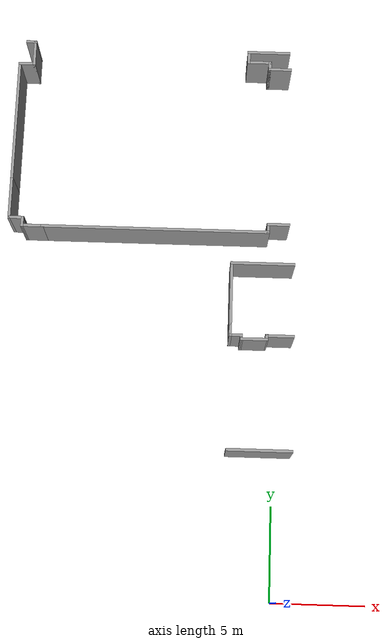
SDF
<sdf version="1.6">
 <model name="volen.world">
  <link name="Wall_270">
   <pose>-0.79477 7.68036 0 0 -0 0</pose>
   <visual name="Wall_270_Visual">
    <pose>0 0 1.25 0 -0 0</pose>
    <geometry><box><size>3.53 0.15 2.5</size></box></geometry>
    <material>
     <script><uri>file://media/materials/scripts/gazebo.material</uri><name>Gazebo/Grey</name></script>
     <ambient>1 1 1 1</ambient>
     <diffuse>0.7 0.7 0.7 1</diffuse>
     <specular>0.01 0.01 0.01 1</specular>
     <emissive>0 0 0 1</emissive>
    </material>
   </visual>
   <collision name="Wall_270_Collision">
    <pose>0 0 1.25 0 -0 0</pose>
    <geometry><box><size>3.53 0.15 2.5</size></box></geometry>
    <surface>
     <friction>
      <ode><mu>1</mu><mu2>1</mu2><fdir1>0 0 0</fdir1><slip1>0</slip1><slip2>0</slip2></ode>
      <torsional>
       <coefficient>1</coefficient>
       <patch_radius>0</patch_radius>
       <surface_radius>0</surface_radius>
       <use_patch_radius>1</use_patch_radius>
       <ode><slip>0</slip></ode>
      </torsional>
     </friction>
     <bounce><restitution_coefficient>0</restitution_coefficient><threshold>1e+06</threshold></bounce>
     <contact>
      <collide_without_contact>0</collide_without_contact>
      <collide_without_contact_bitmask>1</collide_without_contact_bitmask>
      <collide_bitmask>1</collide_bitmask>
      <ode>
       <soft_cfm>0</soft_cfm>
       <soft_erp>0.2</soft_erp>
       <kp>1e+13</kp>
       <kd>1</kd>
       <max_vel>0.01</max_vel>
       <min_depth>0</min_depth>
      </ode>
      <bullet>
       <split_impulse>1</split_impulse>
       <split_impulse_penetration_threshold>-0.01</split_impulse_penetration_threshold>
       <soft_cfm>0</soft_cfm>
       <soft_erp>0.2</soft_erp>
       <kp>1e+13</kp>
       <kd>1</kd>
      </bullet>
     </contact>
    </surface>
   </collision>
  </link>
  <link name="Wall_276">
   <pose>0.19523 13.8104 0 0 -0 3.14159</pose>
   <visual name="Wall_276_Visual">
    <pose>0 0 1.25 0 -0 0</pose>
    <geometry><box><size>1.55 0.15 2.5</size></box></geometry>
    <material>
     <script><uri>file://media/materials/scripts/gazebo.material</uri><name>Gazebo/Grey</name></script>
     <ambient>1 1 1 1</ambient>
     <diffuse>0.7 0.7 0.7 1</diffuse>
     <specular>0.01 0.01 0.01 1</specular>
     <emissive>0 0 0 1</emissive>
    </material>
   </visual>
   <collision name="Wall_276_Collision">
    <pose>0 0 1.25 0 -0 0</pose>
    <geometry><box><size>1.55 0.15 2.5</size></box></geometry>
    <surface>
     <friction>
      <ode><mu>1</mu><mu2>1</mu2><fdir1>0 0 0</fdir1><slip1>0</slip1><slip2>0</slip2></ode>
      <torsional>
       <coefficient>1</coefficient>
       <patch_radius>0</patch_radius>
       <surface_radius>0</surface_radius>
       <use_patch_radius>1</use_patch_radius>
       <ode><slip>0</slip></ode>
      </torsional>
     </friction>
     <bounce><restitution_coefficient>0</restitution_coefficient><threshold>1e+06</threshold></bounce>
     <contact>
      <collide_without_contact>0</collide_without_contact>
      <collide_without_contact_bitmask>1</collide_without_contact_bitmask>
      <collide_bitmask>1</collide_bitmask>
      <ode>
       <soft_cfm>0</soft_cfm>
       <soft_erp>0.2</soft_erp>
       <kp>1e+13</kp>
       <kd>1</kd>
       <max_vel>0.01</max_vel>
       <min_depth>0</min_depth>
      </ode>
      <bullet>
       <split_impulse>1</split_impulse>
       <split_impulse_penetration_threshold>-0.01</split_impulse_penetration_threshold>
       <soft_cfm>0</soft_cfm>
       <soft_erp>0.2</soft_erp>
       <kp>1e+13</kp>
       <kd>1</kd>
      </bullet>
     </contact>
    </surface>
   </collision>
  </link>
  <link name="Wall_278">
   <pose>-0.50477 13.7104 0 0 0 -1.5708</pose>
   <visual name="Wall_278_Visual">
    <pose>0 0 1.25 0 -0 0</pose>
    <geometry><box><size>0.35 0.15 2.5</size></box></geometry>
    <material>
     <script><uri>file://media/materials/scripts/gazebo.material</uri><name>Gazebo/Grey</name></script>
     <ambient>1 1 1 1</ambient>
     <diffuse>0.7 0.7 0.7 1</diffuse>
     <specular>0.01 0.01 0.01 1</specular>
     <emissive>0 0 0 1</emissive>
    </material>
   </visual>
   <collision name="Wall_278_Collision">
    <pose>0 0 1.25 0 -0 0</pose>
    <geometry><box><size>0.35 0.15 2.5</size></box></geometry>
    <surface>
     <friction>
      <ode><mu>1</mu><mu2>1</mu2><fdir1>0 0 0</fdir1><slip1>0</slip1><slip2>0</slip2></ode>
      <torsional>
       <coefficient>1</coefficient>
       <patch_radius>0</patch_radius>
       <surface_radius>0</surface_radius>
       <use_patch_radius>1</use_patch_radius>
       <ode><slip>0</slip></ode>
      </torsional>
     </friction>
     <bounce><restitution_coefficient>0</restitution_coefficient><threshold>1e+06</threshold></bounce>
     <contact>
      <collide_without_contact>0</collide_without_contact>
      <collide_without_contact_bitmask>1</collide_without_contact_bitmask>
      <collide_bitmask>1</collide_bitmask>
      <ode>
       <soft_cfm>0</soft_cfm>
       <soft_erp>0.2</soft_erp>
       <kp>1e+13</kp>
       <kd>1</kd>
       <max_vel>0.01</max_vel>
       <min_depth>0</min_depth>
      </ode>
      <bullet>
       <split_impulse>1</split_impulse>
       <split_impulse_penetration_threshold>-0.01</split_impulse_penetration_threshold>
       <soft_cfm>0</soft_cfm>
       <soft_erp>0.2</soft_erp>
       <kp>1e+13</kp>
       <kd>1</kd>
      </bullet>
     </contact>
    </surface>
   </collision>
  </link>
  <link name="Wall_285">
   <pose>-1.17977 13.6069 0 0 0 -3.13641</pose>
   <visual name="Wall_285_Visual">
    <pose>0 0 1.25 0 -0 0</pose>
    <geometry><box><size>1.5 0.15 2.5</size></box></geometry>
    <material>
     <script><uri>file://media/materials/scripts/gazebo.material</uri><name>Gazebo/Grey</name></script>
     <ambient>1 1 1 1</ambient>
     <diffuse>0.7 0.7 0.7 1</diffuse>
     <specular>0.01 0.01 0.01 1</specular>
     <emissive>0 0 0 1</emissive>
    </material>
   </visual>
   <collision name="Wall_285_Collision">
    <pose>0 0 1.25 0 -0 0</pose>
    <geometry><box><size>1.5 0.15 2.5</size></box></geometry>
    <surface>
     <friction>
      <ode><mu>1</mu><mu2>1</mu2><fdir1>0 0 0</fdir1><slip1>0</slip1><slip2>0</slip2></ode>
      <torsional>
       <coefficient>1</coefficient>
       <patch_radius>0</patch_radius>
       <surface_radius>0</surface_radius>
       <use_patch_radius>1</use_patch_radius>
       <ode><slip>0</slip></ode>
      </torsional>
     </friction>
     <bounce><restitution_coefficient>0</restitution_coefficient><threshold>1e+06</threshold></bounce>
     <contact>
      <collide_without_contact>0</collide_without_contact>
      <collide_without_contact_bitmask>1</collide_without_contact_bitmask>
      <collide_bitmask>1</collide_bitmask>
      <ode>
       <soft_cfm>0</soft_cfm>
       <soft_erp>0.2</soft_erp>
       <kp>1e+13</kp>
       <kd>1</kd>
       <max_vel>0.01</max_vel>
       <min_depth>0</min_depth>
      </ode>
      <bullet>
       <split_impulse>1</split_impulse>
       <split_impulse_penetration_threshold>-0.01</split_impulse_penetration_threshold>
       <soft_cfm>0</soft_cfm>
       <soft_erp>0.2</soft_erp>
       <kp>1e+13</kp>
       <kd>1</kd>
      </bullet>
     </contact>
    </surface>
   </collision>
  </link>
  <link name="Wall_286">
   <pose>-1.85477 13.7034 0 0 -0 1.5708</pose>
   <visual name="Wall_286_Visual">
    <pose>0 0 1.25 0 -0 0</pose>
    <geometry><box><size>0.35 0.15 2.5</size></box></geometry>
    <material>
     <script><uri>file://media/materials/scripts/gazebo.material</uri><name>Gazebo/Grey</name></script>
     <ambient>1 1 1 1</ambient>
     <diffuse>0.7 0.7 0.7 1</diffuse>
     <specular>0.01 0.01 0.01 1</specular>
     <emissive>0 0 0 1</emissive>
    </material>
   </visual>
   <collision name="Wall_286_Collision">
    <pose>0 0 1.25 0 -0 0</pose>
    <geometry><box><size>0.35 0.15 2.5</size></box></geometry>
    <surface>
     <friction>
      <ode><mu>1</mu><mu2>1</mu2><fdir1>0 0 0</fdir1><slip1>0</slip1><slip2>0</slip2></ode>
      <torsional>
       <coefficient>1</coefficient>
       <patch_radius>0</patch_radius>
       <surface_radius>0</surface_radius>
       <use_patch_radius>1</use_patch_radius>
       <ode><slip>0</slip></ode>
      </torsional>
     </friction>
     <bounce><restitution_coefficient>0</restitution_coefficient><threshold>1e+06</threshold></bounce>
     <contact>
      <collide_without_contact>0</collide_without_contact>
      <collide_without_contact_bitmask>1</collide_without_contact_bitmask>
      <collide_bitmask>1</collide_bitmask>
      <ode>
       <soft_cfm>0</soft_cfm>
       <soft_erp>0.2</soft_erp>
       <kp>1e+13</kp>
       <kd>1</kd>
       <max_vel>0.01</max_vel>
       <min_depth>0</min_depth>
      </ode>
      <bullet>
       <split_impulse>1</split_impulse>
       <split_impulse_penetration_threshold>-0.01</split_impulse_penetration_threshold>
       <soft_cfm>0</soft_cfm>
       <soft_erp>0.2</soft_erp>
       <kp>1e+13</kp>
       <kd>1</kd>
      </bullet>
     </contact>
    </surface>
   </collision>
  </link>
  <link name="Wall_291">
   <pose>-2.15477 13.8034 0 0 -0 3.14159</pose>
   <visual name="Wall_291_Visual">
    <pose>0 0 1.25 0 -0 0</pose>
    <geometry><box><size>0.75 0.15 2.5</size></box></geometry>
    <material>
     <script><uri>file://media/materials/scripts/gazebo.material</uri><name>Gazebo/Grey</name></script>
     <ambient>1 1 1 1</ambient>
     <diffuse>0.7 0.7 0.7 1</diffuse>
     <specular>0.01 0.01 0.01 1</specular>
     <emissive>0 0 0 1</emissive>
    </material>
   </visual>
   <collision name="Wall_291_Collision">
    <pose>0 0 1.25 0 -0 0</pose>
    <geometry><box><size>0.75 0.15 2.5</size></box></geometry>
    <surface>
     <friction>
      <ode><mu>1</mu><mu2>1</mu2><fdir1>0 0 0</fdir1><slip1>0</slip1><slip2>0</slip2></ode>
      <torsional>
       <coefficient>1</coefficient>
       <patch_radius>0</patch_radius>
       <surface_radius>0</surface_radius>
       <use_patch_radius>1</use_patch_radius>
       <ode><slip>0</slip></ode>
      </torsional>
     </friction>
     <bounce><restitution_coefficient>0</restitution_coefficient><threshold>1e+06</threshold></bounce>
     <contact>
      <collide_without_contact>0</collide_without_contact>
      <collide_without_contact_bitmask>1</collide_without_contact_bitmask>
      <collide_bitmask>1</collide_bitmask>
      <ode>
       <soft_cfm>0</soft_cfm>
       <soft_erp>0.2</soft_erp>
       <kp>1e+13</kp>
       <kd>1</kd>
       <max_vel>0.01</max_vel>
       <min_depth>0</min_depth>
      </ode>
      <bullet>
       <split_impulse>1</split_impulse>
       <split_impulse_penetration_threshold>-0.01</split_impulse_penetration_threshold>
       <soft_cfm>0</soft_cfm>
       <soft_erp>0.2</soft_erp>
       <kp>1e+13</kp>
       <kd>1</kd>
      </bullet>
     </contact>
    </surface>
   </collision>
  </link>
  <link name="Wall_292">
   <pose>-2.45477 14.1034 0 0 -0 1.5708</pose>
   <visual name="Wall_292_Visual">
    <pose>0 0 1.25 0 -0 0</pose>
    <geometry><box><size>0.75 0.15 2.5</size></box></geometry>
    <material>
     <script><uri>file://media/materials/scripts/gazebo.material</uri><name>Gazebo/Grey</name></script>
     <ambient>1 1 1 1</ambient>
     <diffuse>0.7 0.7 0.7 1</diffuse>
     <specular>0.01 0.01 0.01 1</specular>
     <emissive>0 0 0 1</emissive>
    </material>
   </visual>
   <collision name="Wall_292_Collision">
    <pose>0 0 1.25 0 -0 0</pose>
    <geometry><box><size>0.75 0.15 2.5</size></box></geometry>
    <surface>
     <friction>
      <ode><mu>1</mu><mu2>1</mu2><fdir1>0 0 0</fdir1><slip1>0</slip1><slip2>0</slip2></ode>
      <torsional>
       <coefficient>1</coefficient>
       <patch_radius>0</patch_radius>
       <surface_radius>0</surface_radius>
       <use_patch_radius>1</use_patch_radius>
       <ode><slip>0</slip></ode>
      </torsional>
     </friction>
     <bounce><restitution_coefficient>0</restitution_coefficient><threshold>1e+06</threshold></bounce>
     <contact>
      <collide_without_contact>0</collide_without_contact>
      <collide_without_contact_bitmask>1</collide_without_contact_bitmask>
      <collide_bitmask>1</collide_bitmask>
      <ode>
       <soft_cfm>0</soft_cfm>
       <soft_erp>0.2</soft_erp>
       <kp>1e+13</kp>
       <kd>1</kd>
       <max_vel>0.01</max_vel>
       <min_depth>0</min_depth>
      </ode>
      <bullet>
       <split_impulse>1</split_impulse>
       <split_impulse_penetration_threshold>-0.01</split_impulse_penetration_threshold>
       <soft_cfm>0</soft_cfm>
       <soft_erp>0.2</soft_erp>
       <kp>1e+13</kp>
       <kd>1</kd>
      </bullet>
     </contact>
    </surface>
   </collision>
  </link>
  <link name="Wall_294">
   <pose>-2.45477 16.1034 0 0 -0 1.5708</pose>
   <visual name="Wall_294_Visual">
    <pose>0 0 1.25 0 -0 0</pose>
    <geometry><box><size>3.55 0.15 2.5</size></box></geometry>
    <material>
     <script><uri>file://media/materials/scripts/gazebo.material</uri><name>Gazebo/Grey</name></script>
     <ambient>1 1 1 1</ambient>
     <diffuse>0.7 0.7 0.7 1</diffuse>
     <specular>0.01 0.01 0.01 1</specular>
     <emissive>0 0 0 1</emissive>
    </material>
   </visual>
   <collision name="Wall_294_Collision">
    <pose>0 0 1.25 0 -0 0</pose>
    <geometry><box><size>3.55 0.15 2.5</size></box></geometry>
    <surface>
     <friction>
      <ode><mu>1</mu><mu2>1</mu2><fdir1>0 0 0</fdir1><slip1>0</slip1><slip2>0</slip2></ode>
      <torsional>
       <coefficient>1</coefficient>
       <patch_radius>0</patch_radius>
       <surface_radius>0</surface_radius>
       <use_patch_radius>1</use_patch_radius>
       <ode><slip>0</slip></ode>
      </torsional>
     </friction>
     <bounce><restitution_coefficient>0</restitution_coefficient><threshold>1e+06</threshold></bounce>
     <contact>
      <collide_without_contact>0</collide_without_contact>
      <collide_without_contact_bitmask>1</collide_without_contact_bitmask>
      <collide_bitmask>1</collide_bitmask>
      <ode>
       <soft_cfm>0</soft_cfm>
       <soft_erp>0.2</soft_erp>
       <kp>1e+13</kp>
       <kd>1</kd>
       <max_vel>0.01</max_vel>
       <min_depth>0</min_depth>
      </ode>
      <bullet>
       <split_impulse>1</split_impulse>
       <split_impulse_penetration_threshold>-0.01</split_impulse_penetration_threshold>
       <soft_cfm>0</soft_cfm>
       <soft_erp>0.2</soft_erp>
       <kp>1e+13</kp>
       <kd>1</kd>
      </bullet>
     </contact>
    </surface>
   </collision>
  </link>
  <link name="Wall_296">
   <pose>-0.77977 17.8034 0 0 -0 0</pose>
   <visual name="Wall_296_Visual">
    <pose>0 0 1.25 0 -0 0</pose>
    <geometry><box><size>3.5 0.15 2.5</size></box></geometry>
    <material>
     <script><uri>file://media/materials/scripts/gazebo.material</uri><name>Gazebo/Grey</name></script>
     <ambient>1 1 1 1</ambient>
     <diffuse>0.7 0.7 0.7 1</diffuse>
     <specular>0.01 0.01 0.01 1</specular>
     <emissive>0 0 0 1</emissive>
    </material>
   </visual>
   <collision name="Wall_296_Collision">
    <pose>0 0 1.25 0 -0 0</pose>
    <geometry><box><size>3.5 0.15 2.5</size></box></geometry>
    <surface>
     <friction>
      <ode><mu>1</mu><mu2>1</mu2><fdir1>0 0 0</fdir1><slip1>0</slip1><slip2>0</slip2></ode>
      <torsional>
       <coefficient>1</coefficient>
       <patch_radius>0</patch_radius>
       <surface_radius>0</surface_radius>
       <use_patch_radius>1</use_patch_radius>
       <ode><slip>0</slip></ode>
      </torsional>
     </friction>
     <bounce><restitution_coefficient>0</restitution_coefficient><threshold>1e+06</threshold></bounce>
     <contact>
      <collide_without_contact>0</collide_without_contact>
      <collide_without_contact_bitmask>1</collide_without_contact_bitmask>
      <collide_bitmask>1</collide_bitmask>
      <ode>
       <soft_cfm>0</soft_cfm>
       <soft_erp>0.2</soft_erp>
       <kp>1e+13</kp>
       <kd>1</kd>
       <max_vel>0.01</max_vel>
       <min_depth>0</min_depth>
      </ode>
      <bullet>
       <split_impulse>1</split_impulse>
       <split_impulse_penetration_threshold>-0.01</split_impulse_penetration_threshold>
       <soft_cfm>0</soft_cfm>
       <soft_erp>0.2</soft_erp>
       <kp>1e+13</kp>
       <kd>1</kd>
      </bullet>
     </contact>
    </surface>
   </collision>
  </link>
  <link name="Wall_306">
   <pose>-0.62977 30.2534 0 0 -0 3.14159</pose>
   <visual name="Wall_306_Visual">
    <pose>0 0 1.25 0 -0 0</pose>
    <geometry><box><size>2.4 0.15 2.5</size></box></geometry>
    <material>
     <script><uri>file://media/materials/scripts/gazebo.material</uri><name>Gazebo/Grey</name></script>
     <ambient>1 1 1 1</ambient>
     <diffuse>0.7 0.7 0.7 1</diffuse>
     <specular>0.01 0.01 0.01 1</specular>
     <emissive>0 0 0 1</emissive>
    </material>
   </visual>
   <collision name="Wall_306_Collision">
    <pose>0 0 1.25 0 -0 0</pose>
    <geometry><box><size>2.4 0.15 2.5</size></box></geometry>
    <surface>
     <friction>
      <ode><mu>1</mu><mu2>1</mu2><fdir1>0 0 0</fdir1><slip1>0</slip1><slip2>0</slip2></ode>
      <torsional>
       <coefficient>1</coefficient>
       <patch_radius>0</patch_radius>
       <surface_radius>0</surface_radius>
       <use_patch_radius>1</use_patch_radius>
       <ode><slip>0</slip></ode>
      </torsional>
     </friction>
     <bounce><restitution_coefficient>0</restitution_coefficient><threshold>1e+06</threshold></bounce>
     <contact>
      <collide_without_contact>0</collide_without_contact>
      <collide_without_contact_bitmask>1</collide_without_contact_bitmask>
      <collide_bitmask>1</collide_bitmask>
      <ode>
       <soft_cfm>0</soft_cfm>
       <soft_erp>0.2</soft_erp>
       <kp>1e+13</kp>
       <kd>1</kd>
       <max_vel>0.01</max_vel>
       <min_depth>0</min_depth>
      </ode>
      <bullet>
       <split_impulse>1</split_impulse>
       <split_impulse_penetration_threshold>-0.01</split_impulse_penetration_threshold>
       <soft_cfm>0</soft_cfm>
       <soft_erp>0.2</soft_erp>
       <kp>1e+13</kp>
       <kd>1</kd>
      </bullet>
     </contact>
    </surface>
   </collision>
  </link>
  <link name="Wall_308">
   <pose>-1.75477 29.9499 0 0 0 -1.5708</pose>
   <visual name="Wall_308_Visual">
    <pose>0 0 1.25 0 -0 0</pose>
    <geometry><box><size>0.756924 0.15 2.5</size></box></geometry>
    <material>
     <script><uri>file://media/materials/scripts/gazebo.material</uri><name>Gazebo/Grey</name></script>
     <ambient>1 1 1 1</ambient>
     <diffuse>0.7 0.7 0.7 1</diffuse>
     <specular>0.01 0.01 0.01 1</specular>
     <emissive>0 0 0 1</emissive>
    </material>
   </visual>
   <collision name="Wall_308_Collision">
    <pose>0 0 1.25 0 -0 0</pose>
    <geometry><box><size>0.756924 0.15 2.5</size></box></geometry>
    <surface>
     <friction>
      <ode><mu>1</mu><mu2>1</mu2><fdir1>0 0 0</fdir1><slip1>0</slip1><slip2>0</slip2></ode>
      <torsional>
       <coefficient>1</coefficient>
       <patch_radius>0</patch_radius>
       <surface_radius>0</surface_radius>
       <use_patch_radius>1</use_patch_radius>
       <ode><slip>0</slip></ode>
      </torsional>
     </friction>
     <bounce><restitution_coefficient>0</restitution_coefficient><threshold>1e+06</threshold></bounce>
     <contact>
      <collide_without_contact>0</collide_without_contact>
      <collide_without_contact_bitmask>1</collide_without_contact_bitmask>
      <collide_bitmask>1</collide_bitmask>
      <ode>
       <soft_cfm>0</soft_cfm>
       <soft_erp>0.2</soft_erp>
       <kp>1e+13</kp>
       <kd>1</kd>
       <max_vel>0.01</max_vel>
       <min_depth>0</min_depth>
      </ode>
      <bullet>
       <split_impulse>1</split_impulse>
       <split_impulse_penetration_threshold>-0.01</split_impulse_penetration_threshold>
       <soft_cfm>0</soft_cfm>
       <soft_erp>0.2</soft_erp>
       <kp>1e+13</kp>
       <kd>1</kd>
      </bullet>
     </contact>
    </surface>
   </collision>
  </link>
  <link name="Wall_310">
   <pose>-1.15477 29.6464 0 0 -0 0</pose>
   <visual name="Wall_310_Visual">
    <pose>0 0 1.25 0 -0 0</pose>
    <geometry><box><size>1.35 0.15 2.5</size></box></geometry>
    <material>
     <script><uri>file://media/materials/scripts/gazebo.material</uri><name>Gazebo/Grey</name></script>
     <ambient>1 1 1 1</ambient>
     <diffuse>0.7 0.7 0.7 1</diffuse>
     <specular>0.01 0.01 0.01 1</specular>
     <emissive>0 0 0 1</emissive>
    </material>
   </visual>
   <collision name="Wall_310_Collision">
    <pose>0 0 1.25 0 -0 0</pose>
    <geometry><box><size>1.35 0.15 2.5</size></box></geometry>
    <surface>
     <friction>
      <ode><mu>1</mu><mu2>1</mu2><fdir1>0 0 0</fdir1><slip1>0</slip1><slip2>0</slip2></ode>
      <torsional>
       <coefficient>1</coefficient>
       <patch_radius>0</patch_radius>
       <surface_radius>0</surface_radius>
       <use_patch_radius>1</use_patch_radius>
       <ode><slip>0</slip></ode>
      </torsional>
     </friction>
     <bounce><restitution_coefficient>0</restitution_coefficient><threshold>1e+06</threshold></bounce>
     <contact>
      <collide_without_contact>0</collide_without_contact>
      <collide_without_contact_bitmask>1</collide_without_contact_bitmask>
      <collide_bitmask>1</collide_bitmask>
      <ode>
       <soft_cfm>0</soft_cfm>
       <soft_erp>0.2</soft_erp>
       <kp>1e+13</kp>
       <kd>1</kd>
       <max_vel>0.01</max_vel>
       <min_depth>0</min_depth>
      </ode>
      <bullet>
       <split_impulse>1</split_impulse>
       <split_impulse_penetration_threshold>-0.01</split_impulse_penetration_threshold>
       <soft_cfm>0</soft_cfm>
       <soft_erp>0.2</soft_erp>
       <kp>1e+13</kp>
       <kd>1</kd>
      </bullet>
     </contact>
    </surface>
   </collision>
  </link>
  <link name="Wall_312">
   <pose>-0.55477 29.4464 0 0 0 -1.5708</pose>
   <visual name="Wall_312_Visual">
    <pose>0 0 1.25 0 -0 0</pose>
    <geometry><box><size>0.55 0.15 2.5</size></box></geometry>
    <material>
     <script><uri>file://media/materials/scripts/gazebo.material</uri><name>Gazebo/Grey</name></script>
     <ambient>1 1 1 1</ambient>
     <diffuse>0.7 0.7 0.7 1</diffuse>
     <specular>0.01 0.01 0.01 1</specular>
     <emissive>0 0 0 1</emissive>
    </material>
   </visual>
   <collision name="Wall_312_Collision">
    <pose>0 0 1.25 0 -0 0</pose>
    <geometry><box><size>0.55 0.15 2.5</size></box></geometry>
    <surface>
     <friction>
      <ode><mu>1</mu><mu2>1</mu2><fdir1>0 0 0</fdir1><slip1>0</slip1><slip2>0</slip2></ode>
      <torsional>
       <coefficient>1</coefficient>
       <patch_radius>0</patch_radius>
       <surface_radius>0</surface_radius>
       <use_patch_radius>1</use_patch_radius>
       <ode><slip>0</slip></ode>
      </torsional>
     </friction>
     <bounce><restitution_coefficient>0</restitution_coefficient><threshold>1e+06</threshold></bounce>
     <contact>
      <collide_without_contact>0</collide_without_contact>
      <collide_without_contact_bitmask>1</collide_without_contact_bitmask>
      <collide_bitmask>1</collide_bitmask>
      <ode>
       <soft_cfm>0</soft_cfm>
       <soft_erp>0.2</soft_erp>
       <kp>1e+13</kp>
       <kd>1</kd>
       <max_vel>0.01</max_vel>
       <min_depth>0</min_depth>
      </ode>
      <bullet>
       <split_impulse>1</split_impulse>
       <split_impulse_penetration_threshold>-0.01</split_impulse_penetration_threshold>
       <soft_cfm>0</soft_cfm>
       <soft_erp>0.2</soft_erp>
       <kp>1e+13</kp>
       <kd>1</kd>
      </bullet>
     </contact>
    </surface>
   </collision>
  </link>
  <link name="Wall_314">
   <pose>0.01523 29.2464 0 0 -0 0</pose>
   <visual name="Wall_314_Visual">
    <pose>0 0 1.25 0 -0 0</pose>
    <geometry><box><size>1.29 0.15 2.5</size></box></geometry>
    <material>
     <script><uri>file://media/materials/scripts/gazebo.material</uri><name>Gazebo/Grey</name></script>
     <ambient>1 1 1 1</ambient>
     <diffuse>0.7 0.7 0.7 1</diffuse>
     <specular>0.01 0.01 0.01 1</specular>
     <emissive>0 0 0 1</emissive>
    </material>
   </visual>
   <collision name="Wall_314_Collision">
    <pose>0 0 1.25 0 -0 0</pose>
    <geometry><box><size>1.29 0.15 2.5</size></box></geometry>
    <surface>
     <friction>
      <ode><mu>1</mu><mu2>1</mu2><fdir1>0 0 0</fdir1><slip1>0</slip1><slip2>0</slip2></ode>
      <torsional>
       <coefficient>1</coefficient>
       <patch_radius>0</patch_radius>
       <surface_radius>0</surface_radius>
       <use_patch_radius>1</use_patch_radius>
       <ode><slip>0</slip></ode>
      </torsional>
     </friction>
     <bounce><restitution_coefficient>0</restitution_coefficient><threshold>1e+06</threshold></bounce>
     <contact>
      <collide_without_contact>0</collide_without_contact>
      <collide_without_contact_bitmask>1</collide_without_contact_bitmask>
      <collide_bitmask>1</collide_bitmask>
      <ode>
       <soft_cfm>0</soft_cfm>
       <soft_erp>0.2</soft_erp>
       <kp>1e+13</kp>
       <kd>1</kd>
       <max_vel>0.01</max_vel>
       <min_depth>0</min_depth>
      </ode>
      <bullet>
       <split_impulse>1</split_impulse>
       <split_impulse_penetration_threshold>-0.01</split_impulse_penetration_threshold>
       <soft_cfm>0</soft_cfm>
       <soft_erp>0.2</soft_erp>
       <kp>1e+13</kp>
       <kd>1</kd>
      </bullet>
     </contact>
    </surface>
   </collision>
  </link>
  <link name="Wall_319">
   <pose>0.03523 20.0464 0 0 -0 3.14159</pose>
   <visual name="Wall_319_Visual">
    <pose>0 0 1.25 0 -0 0</pose>
    <geometry><box><size>1.25 0.15 2.5</size></box></geometry>
    <material>
     <script><uri>file://media/materials/scripts/gazebo.material</uri><name>Gazebo/Grey</name></script>
     <ambient>1 1 1 1</ambient>
     <diffuse>0.7 0.7 0.7 1</diffuse>
     <specular>0.01 0.01 0.01 1</specular>
     <emissive>0 0 0 1</emissive>
    </material>
   </visual>
   <collision name="Wall_319_Collision">
    <pose>0 0 1.25 0 -0 0</pose>
    <geometry><box><size>1.25 0.15 2.5</size></box></geometry>
    <surface>
     <friction>
      <ode><mu>1</mu><mu2>1</mu2><fdir1>0 0 0</fdir1><slip1>0</slip1><slip2>0</slip2></ode>
      <torsional>
       <coefficient>1</coefficient>
       <patch_radius>0</patch_radius>
       <surface_radius>0</surface_radius>
       <use_patch_radius>1</use_patch_radius>
       <ode><slip>0</slip></ode>
      </torsional>
     </friction>
     <bounce><restitution_coefficient>0</restitution_coefficient><threshold>1e+06</threshold></bounce>
     <contact>
      <collide_without_contact>0</collide_without_contact>
      <collide_without_contact_bitmask>1</collide_without_contact_bitmask>
      <collide_bitmask>1</collide_bitmask>
      <ode>
       <soft_cfm>0</soft_cfm>
       <soft_erp>0.2</soft_erp>
       <kp>1e+13</kp>
       <kd>1</kd>
       <max_vel>0.01</max_vel>
       <min_depth>0</min_depth>
      </ode>
      <bullet>
       <split_impulse>1</split_impulse>
       <split_impulse_penetration_threshold>-0.01</split_impulse_penetration_threshold>
       <soft_cfm>0</soft_cfm>
       <soft_erp>0.2</soft_erp>
       <kp>1e+13</kp>
       <kd>1</kd>
      </bullet>
     </contact>
    </surface>
   </collision>
  </link>
  <link name="Wall_320">
   <pose>-0.51477 19.8214 0 0 0 -1.5708</pose>
   <visual name="Wall_320_Visual">
    <pose>0 0 1.25 0 -0 0</pose>
    <geometry><box><size>0.6 0.15 2.5</size></box></geometry>
    <material>
     <script><uri>file://media/materials/scripts/gazebo.material</uri><name>Gazebo/Grey</name></script>
     <ambient>1 1 1 1</ambient>
     <diffuse>0.7 0.7 0.7 1</diffuse>
     <specular>0.01 0.01 0.01 1</specular>
     <emissive>0 0 0 1</emissive>
    </material>
   </visual>
   <collision name="Wall_320_Collision">
    <pose>0 0 1.25 0 -0 0</pose>
    <geometry><box><size>0.6 0.15 2.5</size></box></geometry>
    <surface>
     <friction>
      <ode><mu>1</mu><mu2>1</mu2><fdir1>0 0 0</fdir1><slip1>0</slip1><slip2>0</slip2></ode>
      <torsional>
       <coefficient>1</coefficient>
       <patch_radius>0</patch_radius>
       <surface_radius>0</surface_radius>
       <use_patch_radius>1</use_patch_radius>
       <ode><slip>0</slip></ode>
      </torsional>
     </friction>
     <bounce><restitution_coefficient>0</restitution_coefficient><threshold>1e+06</threshold></bounce>
     <contact>
      <collide_without_contact>0</collide_without_contact>
      <collide_without_contact_bitmask>1</collide_without_contact_bitmask>
      <collide_bitmask>1</collide_bitmask>
      <ode>
       <soft_cfm>0</soft_cfm>
       <soft_erp>0.2</soft_erp>
       <kp>1e+13</kp>
       <kd>1</kd>
       <max_vel>0.01</max_vel>
       <min_depth>0</min_depth>
      </ode>
      <bullet>
       <split_impulse>1</split_impulse>
       <split_impulse_penetration_threshold>-0.01</split_impulse_penetration_threshold>
       <soft_cfm>0</soft_cfm>
       <soft_erp>0.2</soft_erp>
       <kp>1e+13</kp>
       <kd>1</kd>
      </bullet>
     </contact>
    </surface>
   </collision>
  </link>
  <link name="Wall_322">
   <pose>-6.68977 19.5964 0 0 -0 3.14159</pose>
   <visual name="Wall_322_Visual">
    <pose>0 0 1.25 0 -0 0</pose>
    <geometry><box><size>12.5 0.15 2.5</size></box></geometry>
    <material>
     <script><uri>file://media/materials/scripts/gazebo.material</uri><name>Gazebo/Grey</name></script>
     <ambient>1 1 1 1</ambient>
     <diffuse>0.7 0.7 0.7 1</diffuse>
     <specular>0.01 0.01 0.01 1</specular>
     <emissive>0 0 0 1</emissive>
    </material>
   </visual>
   <collision name="Wall_322_Collision">
    <pose>0 0 1.25 0 -0 0</pose>
    <geometry><box><size>12.5 0.15 2.5</size></box></geometry>
    <surface>
     <friction>
      <ode><mu>1</mu><mu2>1</mu2><fdir1>0 0 0</fdir1><slip1>0</slip1><slip2>0</slip2></ode>
      <torsional>
       <coefficient>1</coefficient>
       <patch_radius>0</patch_radius>
       <surface_radius>0</surface_radius>
       <use_patch_radius>1</use_patch_radius>
       <ode><slip>0</slip></ode>
      </torsional>
     </friction>
     <bounce><restitution_coefficient>0</restitution_coefficient><threshold>1e+06</threshold></bounce>
     <contact>
      <collide_without_contact>0</collide_without_contact>
      <collide_without_contact_bitmask>1</collide_without_contact_bitmask>
      <collide_bitmask>1</collide_bitmask>
      <ode>
       <soft_cfm>0</soft_cfm>
       <soft_erp>0.2</soft_erp>
       <kp>1e+13</kp>
       <kd>1</kd>
       <max_vel>0.01</max_vel>
       <min_depth>0</min_depth>
      </ode>
      <bullet>
       <split_impulse>1</split_impulse>
       <split_impulse_penetration_threshold>-0.01</split_impulse_penetration_threshold>
       <soft_cfm>0</soft_cfm>
       <soft_erp>0.2</soft_erp>
       <kp>1e+13</kp>
       <kd>1</kd>
      </bullet>
     </contact>
    </surface>
   </collision>
  </link>
  <link name="Wall_324">
   <pose>-13.4148 19.5964 0 0 -0 3.14159</pose>
   <visual name="Wall_324_Visual">
    <pose>0 0 1.25 0 -0 0</pose>
    <geometry><box><size>1.25 0.15 2.5</size></box></geometry>
    <material>
     <script><uri>file://media/materials/scripts/gazebo.material</uri><name>Gazebo/Grey</name></script>
     <ambient>1 1 1 1</ambient>
     <diffuse>0.7 0.7 0.7 1</diffuse>
     <specular>0.01 0.01 0.01 1</specular>
     <emissive>0 0 0 1</emissive>
    </material>
   </visual>
   <collision name="Wall_324_Collision">
    <pose>0 0 1.25 0 -0 0</pose>
    <geometry><box><size>1.25 0.15 2.5</size></box></geometry>
    <surface>
     <friction>
      <ode><mu>1</mu><mu2>1</mu2><fdir1>0 0 0</fdir1><slip1>0</slip1><slip2>0</slip2></ode>
      <torsional>
       <coefficient>1</coefficient>
       <patch_radius>0</patch_radius>
       <surface_radius>0</surface_radius>
       <use_patch_radius>1</use_patch_radius>
       <ode><slip>0</slip></ode>
      </torsional>
     </friction>
     <bounce><restitution_coefficient>0</restitution_coefficient><threshold>1e+06</threshold></bounce>
     <contact>
      <collide_without_contact>0</collide_without_contact>
      <collide_without_contact_bitmask>1</collide_without_contact_bitmask>
      <collide_bitmask>1</collide_bitmask>
      <ode>
       <soft_cfm>0</soft_cfm>
       <soft_erp>0.2</soft_erp>
       <kp>1e+13</kp>
       <kd>1</kd>
       <max_vel>0.01</max_vel>
       <min_depth>0</min_depth>
      </ode>
      <bullet>
       <split_impulse>1</split_impulse>
       <split_impulse_penetration_threshold>-0.01</split_impulse_penetration_threshold>
       <soft_cfm>0</soft_cfm>
       <soft_erp>0.2</soft_erp>
       <kp>1e+13</kp>
       <kd>1</kd>
      </bullet>
     </contact>
    </surface>
   </collision>
  </link>
  <link name="Wall_325">
   <pose>-13.9598 19.8164 0 0 -0 1.54807</pose>
   <visual name="Wall_325_Visual">
    <pose>0 0 1.25 0 -0 0</pose>
    <geometry><box><size>0.590224 0.15 2.5</size></box></geometry>
    <material>
     <script><uri>file://media/materials/scripts/gazebo.material</uri><name>Gazebo/Grey</name></script>
     <ambient>1 1 1 1</ambient>
     <diffuse>0.7 0.7 0.7 1</diffuse>
     <specular>0.01 0.01 0.01 1</specular>
     <emissive>0 0 0 1</emissive>
    </material>
   </visual>
   <collision name="Wall_325_Collision">
    <pose>0 0 1.25 0 -0 0</pose>
    <geometry><box><size>0.590224 0.15 2.5</size></box></geometry>
    <surface>
     <friction>
      <ode><mu>1</mu><mu2>1</mu2><fdir1>0 0 0</fdir1><slip1>0</slip1><slip2>0</slip2></ode>
      <torsional>
       <coefficient>1</coefficient>
       <patch_radius>0</patch_radius>
       <surface_radius>0</surface_radius>
       <use_patch_radius>1</use_patch_radius>
       <ode><slip>0</slip></ode>
      </torsional>
     </friction>
     <bounce><restitution_coefficient>0</restitution_coefficient><threshold>1e+06</threshold></bounce>
     <contact>
      <collide_without_contact>0</collide_without_contact>
      <collide_without_contact_bitmask>1</collide_without_contact_bitmask>
      <collide_bitmask>1</collide_bitmask>
      <ode>
       <soft_cfm>0</soft_cfm>
       <soft_erp>0.2</soft_erp>
       <kp>1e+13</kp>
       <kd>1</kd>
       <max_vel>0.01</max_vel>
       <min_depth>0</min_depth>
      </ode>
      <bullet>
       <split_impulse>1</split_impulse>
       <split_impulse_penetration_threshold>-0.01</split_impulse_penetration_threshold>
       <soft_cfm>0</soft_cfm>
       <soft_erp>0.2</soft_erp>
       <kp>1e+13</kp>
       <kd>1</kd>
      </bullet>
     </contact>
    </surface>
   </collision>
  </link>
  <link name="Wall_327">
   <pose>-14.3248 20.0364 0 0 -0 3.14159</pose>
   <visual name="Wall_327_Visual">
    <pose>0 0 1.25 0 -0 0</pose>
    <geometry><box><size>0.89 0.15 2.5</size></box></geometry>
    <material>
     <script><uri>file://media/materials/scripts/gazebo.material</uri><name>Gazebo/Grey</name></script>
     <ambient>1 1 1 1</ambient>
     <diffuse>0.7 0.7 0.7 1</diffuse>
     <specular>0.01 0.01 0.01 1</specular>
     <emissive>0 0 0 1</emissive>
    </material>
   </visual>
   <collision name="Wall_327_Collision">
    <pose>0 0 1.25 0 -0 0</pose>
    <geometry><box><size>0.89 0.15 2.5</size></box></geometry>
    <surface>
     <friction>
      <ode><mu>1</mu><mu2>1</mu2><fdir1>0 0 0</fdir1><slip1>0</slip1><slip2>0</slip2></ode>
      <torsional>
       <coefficient>1</coefficient>
       <patch_radius>0</patch_radius>
       <surface_radius>0</surface_radius>
       <use_patch_radius>1</use_patch_radius>
       <ode><slip>0</slip></ode>
      </torsional>
     </friction>
     <bounce><restitution_coefficient>0</restitution_coefficient><threshold>1e+06</threshold></bounce>
     <contact>
      <collide_without_contact>0</collide_without_contact>
      <collide_without_contact_bitmask>1</collide_without_contact_bitmask>
      <collide_bitmask>1</collide_bitmask>
      <ode>
       <soft_cfm>0</soft_cfm>
       <soft_erp>0.2</soft_erp>
       <kp>1e+13</kp>
       <kd>1</kd>
       <max_vel>0.01</max_vel>
       <min_depth>0</min_depth>
      </ode>
      <bullet>
       <split_impulse>1</split_impulse>
       <split_impulse_penetration_threshold>-0.01</split_impulse_penetration_threshold>
       <soft_cfm>0</soft_cfm>
       <soft_erp>0.2</soft_erp>
       <kp>1e+13</kp>
       <kd>1</kd>
      </bullet>
     </contact>
    </surface>
   </collision>
  </link>
  <link name="Wall_329">
   <pose>-14.6948 21.2114 0 0 -0 1.5708</pose>
   <visual name="Wall_329_Visual">
    <pose>0 0 1.25 0 -0 0</pose>
    <geometry><box><size>2.5 0.15 2.5</size></box></geometry>
    <material>
     <script><uri>file://media/materials/scripts/gazebo.material</uri><name>Gazebo/Grey</name></script>
     <ambient>1 1 1 1</ambient>
     <diffuse>0.7 0.7 0.7 1</diffuse>
     <specular>0.01 0.01 0.01 1</specular>
     <emissive>0 0 0 1</emissive>
    </material>
   </visual>
   <collision name="Wall_329_Collision">
    <pose>0 0 1.25 0 -0 0</pose>
    <geometry><box><size>2.5 0.15 2.5</size></box></geometry>
    <surface>
     <friction>
      <ode><mu>1</mu><mu2>1</mu2><fdir1>0 0 0</fdir1><slip1>0</slip1><slip2>0</slip2></ode>
      <torsional>
       <coefficient>1</coefficient>
       <patch_radius>0</patch_radius>
       <surface_radius>0</surface_radius>
       <use_patch_radius>1</use_patch_radius>
       <ode><slip>0</slip></ode>
      </torsional>
     </friction>
     <bounce><restitution_coefficient>0</restitution_coefficient><threshold>1e+06</threshold></bounce>
     <contact>
      <collide_without_contact>0</collide_without_contact>
      <collide_without_contact_bitmask>1</collide_without_contact_bitmask>
      <collide_bitmask>1</collide_bitmask>
      <ode>
       <soft_cfm>0</soft_cfm>
       <soft_erp>0.2</soft_erp>
       <kp>1e+13</kp>
       <kd>1</kd>
       <max_vel>0.01</max_vel>
       <min_depth>0</min_depth>
      </ode>
      <bullet>
       <split_impulse>1</split_impulse>
       <split_impulse_penetration_threshold>-0.01</split_impulse_penetration_threshold>
       <soft_cfm>0</soft_cfm>
       <soft_erp>0.2</soft_erp>
       <kp>1e+13</kp>
       <kd>1</kd>
      </bullet>
     </contact>
    </surface>
   </collision>
  </link>
  <link name="Wall_331">
   <pose>-14.6948 25.7864 0 0 -0 1.5708</pose>
   <visual name="Wall_331_Visual">
    <pose>0 0 1.25 0 -0 0</pose>
    <geometry><box><size>6.95 0.15 2.5</size></box></geometry>
    <material>
     <script><uri>file://media/materials/scripts/gazebo.material</uri><name>Gazebo/Grey</name></script>
     <ambient>1 1 1 1</ambient>
     <diffuse>0.7 0.7 0.7 1</diffuse>
     <specular>0.01 0.01 0.01 1</specular>
     <emissive>0 0 0 1</emissive>
    </material>
   </visual>
   <collision name="Wall_331_Collision">
    <pose>0 0 1.25 0 -0 0</pose>
    <geometry><box><size>6.95 0.15 2.5</size></box></geometry>
    <surface>
     <friction>
      <ode><mu>1</mu><mu2>1</mu2><fdir1>0 0 0</fdir1><slip1>0</slip1><slip2>0</slip2></ode>
      <torsional>
       <coefficient>1</coefficient>
       <patch_radius>0</patch_radius>
       <surface_radius>0</surface_radius>
       <use_patch_radius>1</use_patch_radius>
       <ode><slip>0</slip></ode>
      </torsional>
     </friction>
     <bounce><restitution_coefficient>0</restitution_coefficient><threshold>1e+06</threshold></bounce>
     <contact>
      <collide_without_contact>0</collide_without_contact>
      <collide_without_contact_bitmask>1</collide_without_contact_bitmask>
      <collide_bitmask>1</collide_bitmask>
      <ode>
       <soft_cfm>0</soft_cfm>
       <soft_erp>0.2</soft_erp>
       <kp>1e+13</kp>
       <kd>1</kd>
       <max_vel>0.01</max_vel>
       <min_depth>0</min_depth>
      </ode>
      <bullet>
       <split_impulse>1</split_impulse>
       <split_impulse_penetration_threshold>-0.01</split_impulse_penetration_threshold>
       <soft_cfm>0</soft_cfm>
       <soft_erp>0.2</soft_erp>
       <kp>1e+13</kp>
       <kd>1</kd>
      </bullet>
     </contact>
    </surface>
   </collision>
  </link>
  <link name="Wall_333">
   <pose>-14.2948 29.1864 0 0 -0 0</pose>
   <visual name="Wall_333_Visual">
    <pose>0 0 1.25 0 -0 0</pose>
    <geometry><box><size>0.95 0.15 2.5</size></box></geometry>
    <material>
     <script><uri>file://media/materials/scripts/gazebo.material</uri><name>Gazebo/Grey</name></script>
     <ambient>1 1 1 1</ambient>
     <diffuse>0.7 0.7 0.7 1</diffuse>
     <specular>0.01 0.01 0.01 1</specular>
     <emissive>0 0 0 1</emissive>
    </material>
   </visual>
   <collision name="Wall_333_Collision">
    <pose>0 0 1.25 0 -0 0</pose>
    <geometry><box><size>0.95 0.15 2.5</size></box></geometry>
    <surface>
     <friction>
      <ode><mu>1</mu><mu2>1</mu2><fdir1>0 0 0</fdir1><slip1>0</slip1><slip2>0</slip2></ode>
      <torsional>
       <coefficient>1</coefficient>
       <patch_radius>0</patch_radius>
       <surface_radius>0</surface_radius>
       <use_patch_radius>1</use_patch_radius>
       <ode><slip>0</slip></ode>
      </torsional>
     </friction>
     <bounce><restitution_coefficient>0</restitution_coefficient><threshold>1e+06</threshold></bounce>
     <contact>
      <collide_without_contact>0</collide_without_contact>
      <collide_without_contact_bitmask>1</collide_without_contact_bitmask>
      <collide_bitmask>1</collide_bitmask>
      <ode>
       <soft_cfm>0</soft_cfm>
       <soft_erp>0.2</soft_erp>
       <kp>1e+13</kp>
       <kd>1</kd>
       <max_vel>0.01</max_vel>
       <min_depth>0</min_depth>
      </ode>
      <bullet>
       <split_impulse>1</split_impulse>
       <split_impulse_penetration_threshold>-0.01</split_impulse_penetration_threshold>
       <soft_cfm>0</soft_cfm>
       <soft_erp>0.2</soft_erp>
       <kp>1e+13</kp>
       <kd>1</kd>
      </bullet>
     </contact>
    </surface>
   </collision>
  </link>
  <link name="Wall_335">
   <pose>-13.8948 29.8614 0 0 -0 1.5708</pose>
   <visual name="Wall_335_Visual">
    <pose>0 0 1.25 0 -0 0</pose>
    <geometry><box><size>1.5 0.15 2.5</size></box></geometry>
    <material>
     <script><uri>file://media/materials/scripts/gazebo.material</uri><name>Gazebo/Grey</name></script>
     <ambient>1 1 1 1</ambient>
     <diffuse>0.7 0.7 0.7 1</diffuse>
     <specular>0.01 0.01 0.01 1</specular>
     <emissive>0 0 0 1</emissive>
    </material>
   </visual>
   <collision name="Wall_335_Collision">
    <pose>0 0 1.25 0 -0 0</pose>
    <geometry><box><size>1.5 0.15 2.5</size></box></geometry>
    <surface>
     <friction>
      <ode><mu>1</mu><mu2>1</mu2><fdir1>0 0 0</fdir1><slip1>0</slip1><slip2>0</slip2></ode>
      <torsional>
       <coefficient>1</coefficient>
       <patch_radius>0</patch_radius>
       <surface_radius>0</surface_radius>
       <use_patch_radius>1</use_patch_radius>
       <ode><slip>0</slip></ode>
      </torsional>
     </friction>
     <bounce><restitution_coefficient>0</restitution_coefficient><threshold>1e+06</threshold></bounce>
     <contact>
      <collide_without_contact>0</collide_without_contact>
      <collide_without_contact_bitmask>1</collide_without_contact_bitmask>
      <collide_bitmask>1</collide_bitmask>
      <ode>
       <soft_cfm>0</soft_cfm>
       <soft_erp>0.2</soft_erp>
       <kp>1e+13</kp>
       <kd>1</kd>
       <max_vel>0.01</max_vel>
       <min_depth>0</min_depth>
      </ode>
      <bullet>
       <split_impulse>1</split_impulse>
       <split_impulse_penetration_threshold>-0.01</split_impulse_penetration_threshold>
       <soft_cfm>0</soft_cfm>
       <soft_erp>0.2</soft_erp>
       <kp>1e+13</kp>
       <kd>1</kd>
      </bullet>
     </contact>
    </surface>
   </collision>
  </link>
  <link name="Wall_336">
   <pose>-14.1198 30.5364 0 0 -0 3.14159</pose>
   <visual name="Wall_336_Visual">
    <pose>0 0 1.25 0 -0 0</pose>
    <geometry><box><size>0.6 0.15 2.5</size></box></geometry>
    <material>
     <script><uri>file://media/materials/scripts/gazebo.material</uri><name>Gazebo/Grey</name></script>
     <ambient>1 1 1 1</ambient>
     <diffuse>0.7 0.7 0.7 1</diffuse>
     <specular>0.01 0.01 0.01 1</specular>
     <emissive>0 0 0 1</emissive>
    </material>
   </visual>
   <collision name="Wall_336_Collision">
    <pose>0 0 1.25 0 -0 0</pose>
    <geometry><box><size>0.6 0.15 2.5</size></box></geometry>
    <surface>
     <friction>
      <ode><mu>1</mu><mu2>1</mu2><fdir1>0 0 0</fdir1><slip1>0</slip1><slip2>0</slip2></ode>
      <torsional>
       <coefficient>1</coefficient>
       <patch_radius>0</patch_radius>
       <surface_radius>0</surface_radius>
       <use_patch_radius>1</use_patch_radius>
       <ode><slip>0</slip></ode>
      </torsional>
     </friction>
     <bounce><restitution_coefficient>0</restitution_coefficient><threshold>1e+06</threshold></bounce>
     <contact>
      <collide_without_contact>0</collide_without_contact>
      <collide_without_contact_bitmask>1</collide_without_contact_bitmask>
      <collide_bitmask>1</collide_bitmask>
      <ode>
       <soft_cfm>0</soft_cfm>
       <soft_erp>0.2</soft_erp>
       <kp>1e+13</kp>
       <kd>1</kd>
       <max_vel>0.01</max_vel>
       <min_depth>0</min_depth>
      </ode>
      <bullet>
       <split_impulse>1</split_impulse>
       <split_impulse_penetration_threshold>-0.01</split_impulse_penetration_threshold>
       <soft_cfm>0</soft_cfm>
       <soft_erp>0.2</soft_erp>
       <kp>1e+13</kp>
       <kd>1</kd>
      </bullet>
     </contact>
    </surface>
   </collision>
  </link>
  <static>1</static>
 </model>
</sdf>
